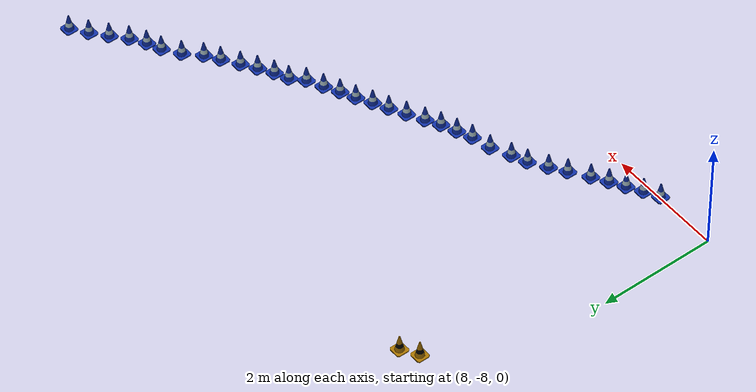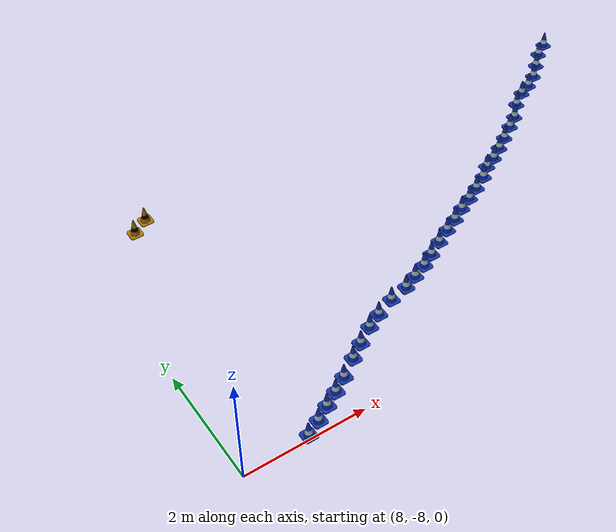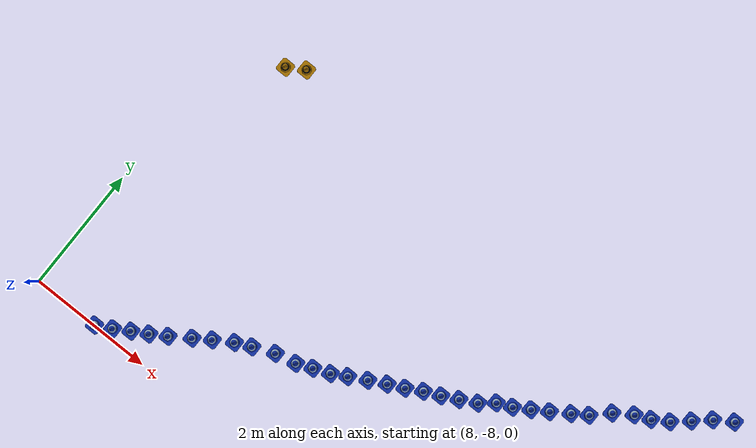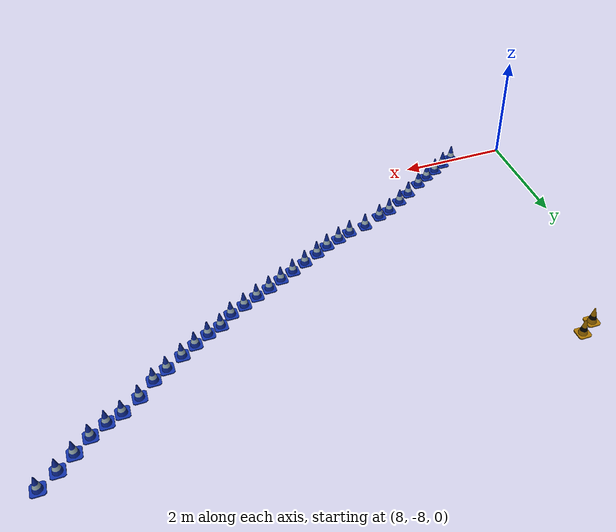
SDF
<sdf version="1.6">
 <model name="small_track">
  <link name="link_0_clone_0_clone_clone_clone_113">
   <pose>9.13365 -2.99635 0.083534 0.001019 -0.000437 -0.000128</pose>
   <visual name="visual">
    <geometry><mesh><uri>model://eufs_description/meshes/cone_yellow.dae</uri></mesh></geometry>
    <material><shader type="pixel"/></material>
   </visual>
  </link>
  <link name="link_0_clone_0_clone_clone_clone_114">
   <pose>8.86208 -3.16288 0.083534 0.001019 -0.000437 -0.000128</pose>
   <visual name="visual">
    <geometry><mesh><uri>model://eufs_description/meshes/cone_yellow.dae</uri></mesh></geometry>
    <material><shader type="pixel"/></material>
   </visual>
  </link>
  <link name="link_0_clone_27">
   <pose>17.1824 -3.23994 0.079001 0 -0 0</pose>
   <visual name="visual">
    <geometry><mesh><uri>model://eufs_description/meshes/cone_blue.dae</uri></mesh></geometry>
    <material><shader type="pixel"/></material>
   </visual>
  </link>
  <link name="link_0_clone_29">
   <pose>11.114 -6.74408 0.079001 0 -0 0</pose>
   <visual name="visual">
    <geometry><mesh><uri>model://eufs_description/meshes/cone_blue.dae</uri></mesh></geometry>
    <material><shader type="pixel"/></material>
   </visual>
  </link>
  <link name="link_0_clone_31">
   <pose>14.2831 -5.26437 0.079001 0 -0 0</pose>
   <visual name="visual">
    <geometry><mesh><uri>model://eufs_description/meshes/cone_blue.dae</uri></mesh></geometry>
    <material><shader type="pixel"/></material>
   </visual>
  </link>
  <link name="link_0_clone_62_clone_176">
   <pose>17.4588 -3.0598 0.063291 -0.001555 0.00019 -5.2e-05</pose>
   <visual name="visual">
    <geometry><mesh><uri>model://eufs_description/meshes/cone_blue.dae</uri></mesh></geometry>
    <material><shader type="pixel"/></material>
   </visual>
  </link>
  <link name="link_0_clone_62_clone_177">
   <pose>16.944 -3.45567 0.063291 -0.001555 0.00019 -5.2e-05</pose>
   <visual name="visual">
    <geometry><mesh><uri>model://eufs_description/meshes/cone_blue.dae</uri></mesh></geometry>
    <material><shader type="pixel"/></material>
   </visual>
  </link>
  <link name="link_0_clone_62_clone_178">
   <pose>16.7029 -3.66615 0.063291 -0.001555 0.00019 -5.2e-05</pose>
   <visual name="visual">
    <geometry><mesh><uri>model://eufs_description/meshes/cone_blue.dae</uri></mesh></geometry>
    <material><shader type="pixel"/></material>
   </visual>
  </link>
  <link name="link_0_clone_62_clone_179">
   <pose>16.4584 -3.8196 0.063291 -0.001555 0.00019 -5.2e-05</pose>
   <visual name="visual">
    <geometry><mesh><uri>model://eufs_description/meshes/cone_blue.dae</uri></mesh></geometry>
    <material><shader type="pixel"/></material>
   </visual>
  </link>
  <link name="link_0_clone_62_clone_180">
   <pose>16.2192 -3.92363 0.063291 -0.001555 0.00019 -5.2e-05</pose>
   <visual name="visual">
    <geometry><mesh><uri>model://eufs_description/meshes/cone_blue.dae</uri></mesh></geometry>
    <material><shader type="pixel"/></material>
   </visual>
  </link>
  <link name="link_0_clone_62_clone_181">
   <pose>15.944 -4.1116 0.063291 -0.001555 0.00019 -5.2e-05</pose>
   <visual name="visual">
    <geometry><mesh><uri>model://eufs_description/meshes/cone_blue.dae</uri></mesh></geometry>
    <material><shader type="pixel"/></material>
   </visual>
  </link>
  <link name="link_0_clone_62_clone_182">
   <pose>15.6966 -4.35519 0.063291 -0.001555 0.00019 -5.2e-05</pose>
   <visual name="visual">
    <geometry><mesh><uri>model://eufs_description/meshes/cone_blue.dae</uri></mesh></geometry>
    <material><shader type="pixel"/></material>
   </visual>
  </link>
  <link name="link_0_clone_62_clone_183">
   <pose>15.4685 -4.50772 0.063291 -0.001555 0.00019 -5.2e-05</pose>
   <visual name="visual">
    <geometry><mesh><uri>model://eufs_description/meshes/cone_blue.dae</uri></mesh></geometry>
    <material><shader type="pixel"/></material>
   </visual>
  </link>
  <link name="link_0_clone_62_clone_184">
   <pose>15.2009 -4.68702 0.063291 -0.001555 0.00019 -5.2e-05</pose>
   <visual name="visual">
    <geometry><mesh><uri>model://eufs_description/meshes/cone_blue.dae</uri></mesh></geometry>
    <material><shader type="pixel"/></material>
   </visual>
  </link>
  <link name="link_0_clone_62_clone_185">
   <pose>14.9646 -4.83998 0.063291 -0.001555 0.00019 -5.2e-05</pose>
   <visual name="visual">
    <geometry><mesh><uri>model://eufs_description/meshes/cone_blue.dae</uri></mesh></geometry>
    <material><shader type="pixel"/></material>
   </visual>
  </link>
  <link name="link_0_clone_62_clone_186">
   <pose>14.7277 -4.98478 0.063291 -0.001555 0.00019 -5.2e-05</pose>
   <visual name="visual">
    <geometry><mesh><uri>model://eufs_description/meshes/cone_blue.dae</uri></mesh></geometry>
    <material><shader type="pixel"/></material>
   </visual>
  </link>
  <link name="link_0_clone_62_clone_187">
   <pose>14.4966 -5.08839 0.063291 -0.001555 0.00019 -5.2e-05</pose>
   <visual name="visual">
    <geometry><mesh><uri>model://eufs_description/meshes/cone_blue.dae</uri></mesh></geometry>
    <material><shader type="pixel"/></material>
   </visual>
  </link>
  <link name="link_0_clone_62_clone_188">
   <pose>14.0297 -5.40111 0.063291 -0.001555 0.00019 -5.2e-05</pose>
   <visual name="visual">
    <geometry><mesh><uri>model://eufs_description/meshes/cone_blue.dae</uri></mesh></geometry>
    <material><shader type="pixel"/></material>
   </visual>
  </link>
  <link name="link_0_clone_62_clone_189">
   <pose>13.7838 -5.53006 0.063291 -0.001555 0.00019 -5.2e-05</pose>
   <visual name="visual">
    <geometry><mesh><uri>model://eufs_description/meshes/cone_blue.dae</uri></mesh></geometry>
    <material><shader type="pixel"/></material>
   </visual>
  </link>
  <link name="link_0_clone_62_clone_190">
   <pose>13.5369 -5.64272 0.063291 -0.001555 0.00019 -5.2e-05</pose>
   <visual name="visual">
    <geometry><mesh><uri>model://eufs_description/meshes/cone_blue.dae</uri></mesh></geometry>
    <material><shader type="pixel"/></material>
   </visual>
  </link>
  <link name="link_0_clone_62_clone_191">
   <pose>13.2913 -5.77991 0.063291 -0.001555 0.00019 -5.2e-05</pose>
   <visual name="visual">
    <geometry><mesh><uri>model://eufs_description/meshes/cone_blue.dae</uri></mesh></geometry>
    <material><shader type="pixel"/></material>
   </visual>
  </link>
  <link name="link_0_clone_62_clone_192">
   <pose>13.0449 -5.90073 0.063291 -0.001555 0.00019 -5.2e-05</pose>
   <visual name="visual">
    <geometry><mesh><uri>model://eufs_description/meshes/cone_blue.dae</uri></mesh></geometry>
    <material><shader type="pixel"/></material>
   </visual>
  </link>
  <link name="link_0_clone_62_clone_193">
   <pose>12.783 -6.03886 0.063291 -0.001555 0.00019 -5.2e-05</pose>
   <visual name="visual">
    <geometry><mesh><uri>model://eufs_description/meshes/cone_blue.dae</uri></mesh></geometry>
    <material><shader type="pixel"/></material>
   </visual>
  </link>
  <link name="link_0_clone_62_clone_194">
   <pose>12.5135 -6.18561 0.063291 -0.001555 0.00019 -5.2e-05</pose>
   <visual name="visual">
    <geometry><mesh><uri>model://eufs_description/meshes/cone_blue.dae</uri></mesh></geometry>
    <material><shader type="pixel"/></material>
   </visual>
  </link>
  <link name="link_0_clone_62_clone_195">
   <pose>12.2838 -6.31363 0.063291 -0.001555 0.00019 -5.2e-05</pose>
   <visual name="visual">
    <geometry><mesh><uri>model://eufs_description/meshes/cone_blue.dae</uri></mesh></geometry>
    <material><shader type="pixel"/></material>
   </visual>
  </link>
  <link name="link_0_clone_62_clone_196">
   <pose>12.0283 -6.41862 0.063291 -0.001555 0.00019 -5.2e-05</pose>
   <visual name="visual">
    <geometry><mesh><uri>model://eufs_description/meshes/cone_blue.dae</uri></mesh></geometry>
    <material><shader type="pixel"/></material>
   </visual>
  </link>
  <link name="link_0_clone_62_clone_197">
   <pose>11.7809 -6.52312 0.063291 -0.001555 0.00019 -5.2e-05</pose>
   <visual name="visual">
    <geometry><mesh><uri>model://eufs_description/meshes/cone_blue.dae</uri></mesh></geometry>
    <material><shader type="pixel"/></material>
   </visual>
  </link>
  <link name="link_0_clone_62_clone_198">
   <pose>11.4499 -6.59986 0.063291 -0.001555 0.00019 -5.2e-05</pose>
   <visual name="visual">
    <geometry><mesh><uri>model://eufs_description/meshes/cone_blue.dae</uri></mesh></geometry>
    <material><shader type="pixel"/></material>
   </visual>
  </link>
  <link name="link_0_clone_62_clone_199">
   <pose>10.8685 -6.85909 0.063291 -0.001555 0.00019 -5.2e-05</pose>
   <visual name="visual">
    <geometry><mesh><uri>model://eufs_description/meshes/cone_blue.dae</uri></mesh></geometry>
    <material><shader type="pixel"/></material>
   </visual>
  </link>
  <link name="link_0_clone_62_clone_200">
   <pose>10.5845 -7.03939 0.063291 -0.001555 0.00019 -5.2e-05</pose>
   <visual name="visual">
    <geometry><mesh><uri>model://eufs_description/meshes/cone_blue.dae</uri></mesh></geometry>
    <material><shader type="pixel"/></material>
   </visual>
  </link>
  <link name="link_0_clone_62_clone_201">
   <pose>10.3329 -7.20958 0.063291 -0.001555 0.00019 -5.2e-05</pose>
   <visual name="visual">
    <geometry><mesh><uri>model://eufs_description/meshes/cone_blue.dae</uri></mesh></geometry>
    <material><shader type="pixel"/></material>
   </visual>
  </link>
  <link name="link_0_clone_62_clone_202">
   <pose>10.034 -7.41527 0.063291 -0.001555 0.00019 -5.2e-05</pose>
   <visual name="visual">
    <geometry><mesh><uri>model://eufs_description/meshes/cone_blue.dae</uri></mesh></geometry>
    <material><shader type="pixel"/></material>
   </visual>
  </link>
  <link name="link_0_clone_62_clone_203">
   <pose>9.78936 -7.56886 0.063291 -0.001555 0.00019 -5.2e-05</pose>
   <visual name="visual">
    <geometry><mesh><uri>model://eufs_description/meshes/cone_blue.dae</uri></mesh></geometry>
    <material><shader type="pixel"/></material>
   </visual>
  </link>
  <link name="link_0_clone_62_clone_204">
   <pose>9.55207 -7.70541 0.063291 -0.001555 0.00019 -5.2e-05</pose>
   <visual name="visual">
    <geometry><mesh><uri>model://eufs_description/meshes/cone_blue.dae</uri></mesh></geometry>
    <material><shader type="pixel"/></material>
   </visual>
  </link>
  <link name="link_0_clone_62_clone_205">
   <pose>9.31521 -7.85032 0.063291 -0.001555 0.00019 -5.2e-05</pose>
   <visual name="visual">
    <geometry><mesh><uri>model://eufs_description/meshes/cone_blue.dae</uri></mesh></geometry>
    <material><shader type="pixel"/></material>
   </visual>
  </link>
  <link name="link_0_clone_62_clone_206">
   <pose>9.06912 -7.9793 0.063291 -0.001555 0.00019 -5.2e-05</pose>
   <visual name="visual">
    <geometry><mesh><uri>model://eufs_description/meshes/cone_blue.dae</uri></mesh></geometry>
    <material><shader type="pixel"/></material>
   </visual>
  </link>
  <static>1</static>
 </model>
</sdf>
